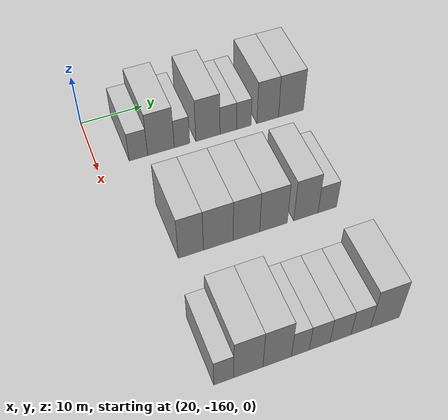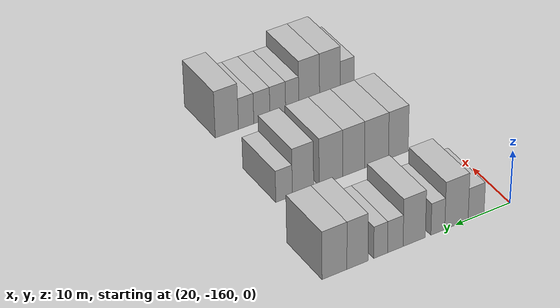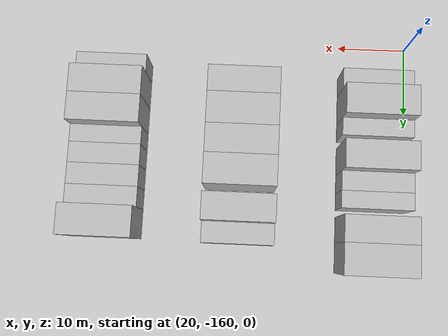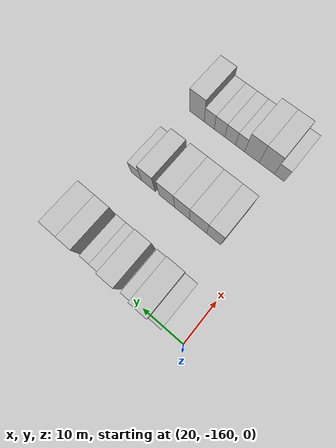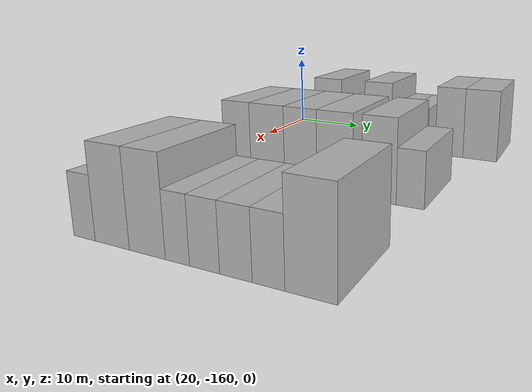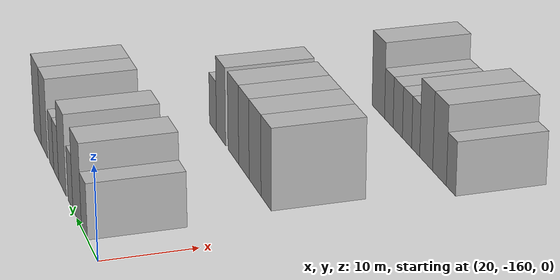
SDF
<sdf version="1.6">
 <world name="default">
  <model name="building_23">
   <static>1</static>
   <pose>25.0000 -153.6827 0 0.000000 0.000000 0.000000</pose>
   <link name="link">
    <pose>0 0 3.00 0 0 0</pose>
    <collision name="collision"><geometry><box><size>10.0000 2.9243 6.0000</size></box></geometry></collision>
    <visual name="visual">
     <cast_shadows>0</cast_shadows>
     <geometry><box><size>10.0000 2.9243 6.0000</size></box></geometry>
     <material>
      <script>
       <uri>model://HANNAS_wall/materials/scripts</uri>
       <uri>model://HANNAS_wall/materials/textures</uri>
       <name>vrc/HANNAS_wall</name>
      </script>
     </material>
    </visual>
   </link>
  </model>
  <model name="building_24">
   <static>1</static>
   <pose>25.0000 -150.0973 0 0.000000 0.000000 0.000000</pose>
   <link name="link">
    <pose>0 0 4.50 0 0 0</pose>
    <collision name="collision"><geometry><box><size>10.0000 4.2466 9.0000</size></box></geometry></collision>
    <visual name="visual">
     <cast_shadows>0</cast_shadows>
     <geometry><box><size>10.0000 4.2466 9.0000</size></box></geometry>
     <material>
      <script>
       <uri>model://HANNAS_wall/materials/scripts</uri>
       <uri>model://HANNAS_wall/materials/textures</uri>
       <name>vrc/HANNAS_wall</name>
      </script>
     </material>
    </visual>
   </link>
  </model>
  <model name="building_25">
   <static>1</static>
   <pose>25.0000 -146.7279 0 0.000000 0.000000 0.000000</pose>
   <link name="link">
    <pose>0 0 3.00 0 0 0</pose>
    <collision name="collision"><geometry><box><size>10.0000 2.4922 6.0000</size></box></geometry></collision>
    <visual name="visual">
     <cast_shadows>0</cast_shadows>
     <geometry><box><size>10.0000 2.4922 6.0000</size></box></geometry>
     <material>
      <script>
       <uri>model://HANNAS_wall/materials/scripts</uri>
       <uri>model://HANNAS_wall/materials/textures</uri>
       <name>vrc/HANNAS_wall</name>
      </script>
     </material>
    </visual>
   </link>
  </model>
  <model name="building_26">
   <static>1</static>
   <pose>25.0000 -142.4939 0 0.000000 0.000000 0.000000</pose>
   <link name="link">
    <pose>0 0 4.50 0 0 0</pose>
    <collision name="collision"><geometry><box><size>10.0000 3.9759 9.0000</size></box></geometry></collision>
    <visual name="visual">
     <cast_shadows>0</cast_shadows>
     <geometry><box><size>10.0000 3.9759 9.0000</size></box></geometry>
     <material>
      <script>
       <uri>model://HANNAS_wall/materials/scripts</uri>
       <uri>model://HANNAS_wall/materials/textures</uri>
       <name>vrc/HANNAS_wall</name>
      </script>
     </material>
    </visual>
   </link>
  </model>
  <model name="building_27">
   <static>1</static>
   <pose>25.0000 -139.1345 0 0.000000 0.000000 0.000000</pose>
   <link name="link">
    <pose>0 0 3.00 0 0 0</pose>
    <collision name="collision"><geometry><box><size>10.0000 2.7429 6.0000</size></box></geometry></collision>
    <visual name="visual">
     <cast_shadows>0</cast_shadows>
     <geometry><box><size>10.0000 2.7429 6.0000</size></box></geometry>
     <material>
      <script>
       <uri>model://HANNAS_wall/materials/scripts</uri>
       <uri>model://HANNAS_wall/materials/textures</uri>
       <name>vrc/HANNAS_wall</name>
      </script>
     </material>
    </visual>
   </link>
  </model>
  <model name="building_28">
   <static>1</static>
   <pose>25.0000 -136.5492 0 0.000000 0.000000 0.000000</pose>
   <link name="link">
    <pose>0 0 3.00 0 0 0</pose>
    <collision name="collision"><geometry><box><size>10.0000 2.4277 6.0000</size></box></geometry></collision>
    <visual name="visual">
     <cast_shadows>0</cast_shadows>
     <geometry><box><size>10.0000 2.4277 6.0000</size></box></geometry>
     <material>
      <script>
       <uri>model://HANNAS_wall/materials/scripts</uri>
       <uri>model://HANNAS_wall/materials/textures</uri>
       <name>vrc/HANNAS_wall</name>
      </script>
     </material>
    </visual>
   </link>
  </model>
  <model name="building_29">
   <static>1</static>
   <pose>25.0000 -132.5048 0 0.000000 0.000000 0.000000</pose>
   <link name="link">
    <pose>0 0 4.50 0 0 0</pose>
    <collision name="collision"><geometry><box><size>10.0000 3.6610 9.0000</size></box></geometry></collision>
    <visual name="visual">
     <cast_shadows>0</cast_shadows>
     <geometry><box><size>10.0000 3.6610 9.0000</size></box></geometry>
     <material>
      <script>
       <uri>model://HANNAS_wall/materials/scripts</uri>
       <uri>model://HANNAS_wall/materials/textures</uri>
       <name>vrc/HANNAS_wall</name>
      </script>
     </material>
    </visual>
   </link>
  </model>
  <model name="building_30">
   <static>1</static>
   <pose>25.0000 -128.5264 0 0.000000 0.000000 0.000000</pose>
   <link name="link">
    <pose>0 0 4.50 0 0 0</pose>
    <collision name="collision"><geometry><box><size>10.0000 4.2959 9.0000</size></box></geometry></collision>
    <visual name="visual">
     <cast_shadows>0</cast_shadows>
     <geometry><box><size>10.0000 4.2959 9.0000</size></box></geometry>
     <material>
      <script>
       <uri>model://HANNAS_wall/materials/scripts</uri>
       <uri>model://HANNAS_wall/materials/textures</uri>
       <name>vrc/HANNAS_wall</name>
      </script>
     </material>
    </visual>
   </link>
  </model>
  <model name="building_137">
   <static>1</static>
   <pose>44.0000 -152.0893 0 0.000000 0.000000 0.000000</pose>
   <link name="link">
    <pose>0 0 4.50 0 0 0</pose>
    <collision name="collision"><geometry><box><size>10.0000 3.6848 9.0000</size></box></geometry></collision>
    <visual name="visual">
     <cast_shadows>0</cast_shadows>
     <geometry><box><size>10.0000 3.6848 9.0000</size></box></geometry>
     <material>
      <script>
       <uri>model://HANNAS_wall/materials/scripts</uri>
       <uri>model://HANNAS_wall/materials/textures</uri>
       <name>vrc/HANNAS_wall</name>
      </script>
     </material>
    </visual>
   </link>
  </model>
  <model name="building_138">
   <static>1</static>
   <pose>44.0000 -148.0430 0 0.000000 0.000000 0.000000</pose>
   <link name="link">
    <pose>0 0 4.50 0 0 0</pose>
    <collision name="collision"><geometry><box><size>10.0000 4.4079 9.0000</size></box></geometry></collision>
    <visual name="visual">
     <cast_shadows>0</cast_shadows>
     <geometry><box><size>10.0000 4.4079 9.0000</size></box></geometry>
     <material>
      <script>
       <uri>model://HANNAS_wall/materials/scripts</uri>
       <uri>model://HANNAS_wall/materials/textures</uri>
       <name>vrc/HANNAS_wall</name>
      </script>
     </material>
    </visual>
   </link>
  </model>
  <model name="building_139">
   <static>1</static>
   <pose>44.0000 -143.8289 0 0.000000 0.000000 0.000000</pose>
   <link name="link">
    <pose>0 0 4.50 0 0 0</pose>
    <collision name="collision"><geometry><box><size>10.0000 4.0201 9.0000</size></box></geometry></collision>
    <visual name="visual">
     <cast_shadows>0</cast_shadows>
     <geometry><box><size>10.0000 4.0201 9.0000</size></box></geometry>
     <material>
      <script>
       <uri>model://HANNAS_wall/materials/scripts</uri>
       <uri>model://HANNAS_wall/materials/textures</uri>
       <name>vrc/HANNAS_wall</name>
      </script>
     </material>
    </visual>
   </link>
  </model>
  <model name="building_140">
   <static>1</static>
   <pose>44.0000 -139.6996 0 0.000000 0.000000 0.000000</pose>
   <link name="link">
    <pose>0 0 4.50 0 0 0</pose>
    <collision name="collision"><geometry><box><size>10.0000 4.2386 9.0000</size></box></geometry></collision>
    <visual name="visual">
     <cast_shadows>0</cast_shadows>
     <geometry><box><size>10.0000 4.2386 9.0000</size></box></geometry>
     <material>
      <script>
       <uri>model://HANNAS_wall/materials/scripts</uri>
       <uri>model://HANNAS_wall/materials/textures</uri>
       <name>vrc/HANNAS_wall</name>
      </script>
     </material>
    </visual>
   </link>
  </model>
  <model name="building_141">
   <static>1</static>
   <pose>44.0000 -134.6802 0 0.000000 0.000000 0.000000</pose>
   <link name="link">
    <pose>0 0 4.50 0 0 0</pose>
    <collision name="collision"><geometry><box><size>10.0000 3.8001 9.0000</size></box></geometry></collision>
    <visual name="visual">
     <cast_shadows>0</cast_shadows>
     <geometry><box><size>10.0000 3.8001 9.0000</size></box></geometry>
     <material>
      <script>
       <uri>model://HANNAS_wall/materials/scripts</uri>
       <uri>model://HANNAS_wall/materials/textures</uri>
       <name>vrc/HANNAS_wall</name>
      </script>
     </material>
    </visual>
   </link>
  </model>
  <model name="building_142">
   <static>1</static>
   <pose>44.0000 -131.3070 0 0.000000 0.000000 0.000000</pose>
   <link name="link">
    <pose>0 0 3.00 0 0 0</pose>
    <collision name="collision"><geometry><box><size>10.0000 2.9463 6.0000</size></box></geometry></collision>
    <visual name="visual">
     <cast_shadows>0</cast_shadows>
     <geometry><box><size>10.0000 2.9463 6.0000</size></box></geometry>
     <material>
      <script>
       <uri>model://HANNAS_wall/materials/scripts</uri>
       <uri>model://HANNAS_wall/materials/textures</uri>
       <name>vrc/HANNAS_wall</name>
      </script>
     </material>
    </visual>
   </link>
  </model>
  <model name="building_255">
   <static>1</static>
   <pose>63.0000 -154.6199 0 0.000000 0.000000 0.000000</pose>
   <link name="link">
    <pose>0 0 3.00 0 0 0</pose>
    <collision name="collision"><geometry><box><size>10.0000 2.6270 6.0000</size></box></geometry></collision>
    <visual name="visual">
     <cast_shadows>0</cast_shadows>
     <geometry><box><size>10.0000 2.6270 6.0000</size></box></geometry>
     <material>
      <script>
       <uri>model://HANNAS_wall/materials/scripts</uri>
       <uri>model://HANNAS_wall/materials/textures</uri>
       <name>vrc/HANNAS_wall</name>
      </script>
     </material>
    </visual>
   </link>
  </model>
  <model name="building_256">
   <static>1</static>
   <pose>63.0000 -151.3208 0 0.000000 0.000000 0.000000</pose>
   <link name="link">
    <pose>0 0 4.50 0 0 0</pose>
    <collision name="collision"><geometry><box><size>10.0000 3.9711 9.0000</size></box></geometry></collision>
    <visual name="visual">
     <cast_shadows>0</cast_shadows>
     <geometry><box><size>10.0000 3.9711 9.0000</size></box></geometry>
     <material>
      <script>
       <uri>model://HANNAS_wall/materials/scripts</uri>
       <uri>model://HANNAS_wall/materials/textures</uri>
       <name>vrc/HANNAS_wall</name>
      </script>
     </material>
    </visual>
   </link>
  </model>
  <model name="building_257">
   <static>1</static>
   <pose>63.0000 -147.3863 0 0.000000 0.000000 0.000000</pose>
   <link name="link">
    <pose>0 0 4.50 0 0 0</pose>
    <collision name="collision"><geometry><box><size>10.0000 3.8979 9.0000</size></box></geometry></collision>
    <visual name="visual">
     <cast_shadows>0</cast_shadows>
     <geometry><box><size>10.0000 3.8979 9.0000</size></box></geometry>
     <material>
      <script>
       <uri>model://HANNAS_wall/materials/scripts</uri>
       <uri>model://HANNAS_wall/materials/textures</uri>
       <name>vrc/HANNAS_wall</name>
      </script>
     </material>
    </visual>
   </link>
  </model>
  <model name="building_258">
   <static>1</static>
   <pose>63.0000 -144.1984 0 0.000000 0.000000 0.000000</pose>
   <link name="link">
    <pose>0 0 3.00 0 0 0</pose>
    <collision name="collision"><geometry><box><size>10.0000 2.4780 6.0000</size></box></geometry></collision>
    <visual name="visual">
     <cast_shadows>0</cast_shadows>
     <geometry><box><size>10.0000 2.4780 6.0000</size></box></geometry>
     <material>
      <script>
       <uri>model://HANNAS_wall/materials/scripts</uri>
       <uri>model://HANNAS_wall/materials/textures</uri>
       <name>vrc/HANNAS_wall</name>
      </script>
     </material>
    </visual>
   </link>
  </model>
  <model name="building_259">
   <static>1</static>
   <pose>63.0000 -141.5056 0 0.000000 0.000000 0.000000</pose>
   <link name="link">
    <pose>0 0 3.00 0 0 0</pose>
    <collision name="collision"><geometry><box><size>10.0000 2.9075 6.0000</size></box></geometry></collision>
    <visual name="visual">
     <cast_shadows>0</cast_shadows>
     <geometry><box><size>10.0000 2.9075 6.0000</size></box></geometry>
     <material>
      <script>
       <uri>model://HANNAS_wall/materials/scripts</uri>
       <uri>model://HANNAS_wall/materials/textures</uri>
       <name>vrc/HANNAS_wall</name>
      </script>
     </material>
    </visual>
   </link>
  </model>
  <model name="building_260">
   <static>1</static>
   <pose>63.0000 -138.5578 0 0.000000 0.000000 0.000000</pose>
   <link name="link">
    <pose>0 0 3.00 0 0 0</pose>
    <collision name="collision"><geometry><box><size>10.0000 2.9880 6.0000</size></box></geometry></collision>
    <visual name="visual">
     <cast_shadows>0</cast_shadows>
     <geometry><box><size>10.0000 2.9880 6.0000</size></box></geometry>
     <material>
      <script>
       <uri>model://HANNAS_wall/materials/scripts</uri>
       <uri>model://HANNAS_wall/materials/textures</uri>
       <name>vrc/HANNAS_wall</name>
      </script>
     </material>
    </visual>
   </link>
  </model>
  <model name="building_261">
   <static>1</static>
   <pose>63.0000 -135.6536 0 0.000000 0.000000 0.000000</pose>
   <link name="link">
    <pose>0 0 3.00 0 0 0</pose>
    <collision name="collision"><geometry><box><size>10.0000 2.8206 6.0000</size></box></geometry></collision>
    <visual name="visual">
     <cast_shadows>0</cast_shadows>
     <geometry><box><size>10.0000 2.8206 6.0000</size></box></geometry>
     <material>
      <script>
       <uri>model://HANNAS_wall/materials/scripts</uri>
       <uri>model://HANNAS_wall/materials/textures</uri>
       <name>vrc/HANNAS_wall</name>
      </script>
     </material>
    </visual>
   </link>
  </model>
  <model name="building_262">
   <static>1</static>
   <pose>63.0000 -132.1346 0 0.000000 0.000000 0.000000</pose>
   <link name="link">
    <pose>0 0 4.50 0 0 0</pose>
    <collision name="collision"><geometry><box><size>10.0000 4.2174 9.0000</size></box></geometry></collision>
    <visual name="visual">
     <cast_shadows>0</cast_shadows>
     <geometry><box><size>10.0000 4.2174 9.0000</size></box></geometry>
     <material>
      <script>
       <uri>model://HANNAS_wall/materials/scripts</uri>
       <uri>model://HANNAS_wall/materials/textures</uri>
       <name>vrc/HANNAS_wall</name>
      </script>
     </material>
    </visual>
   </link>
  </model>
 </world>
</sdf>
